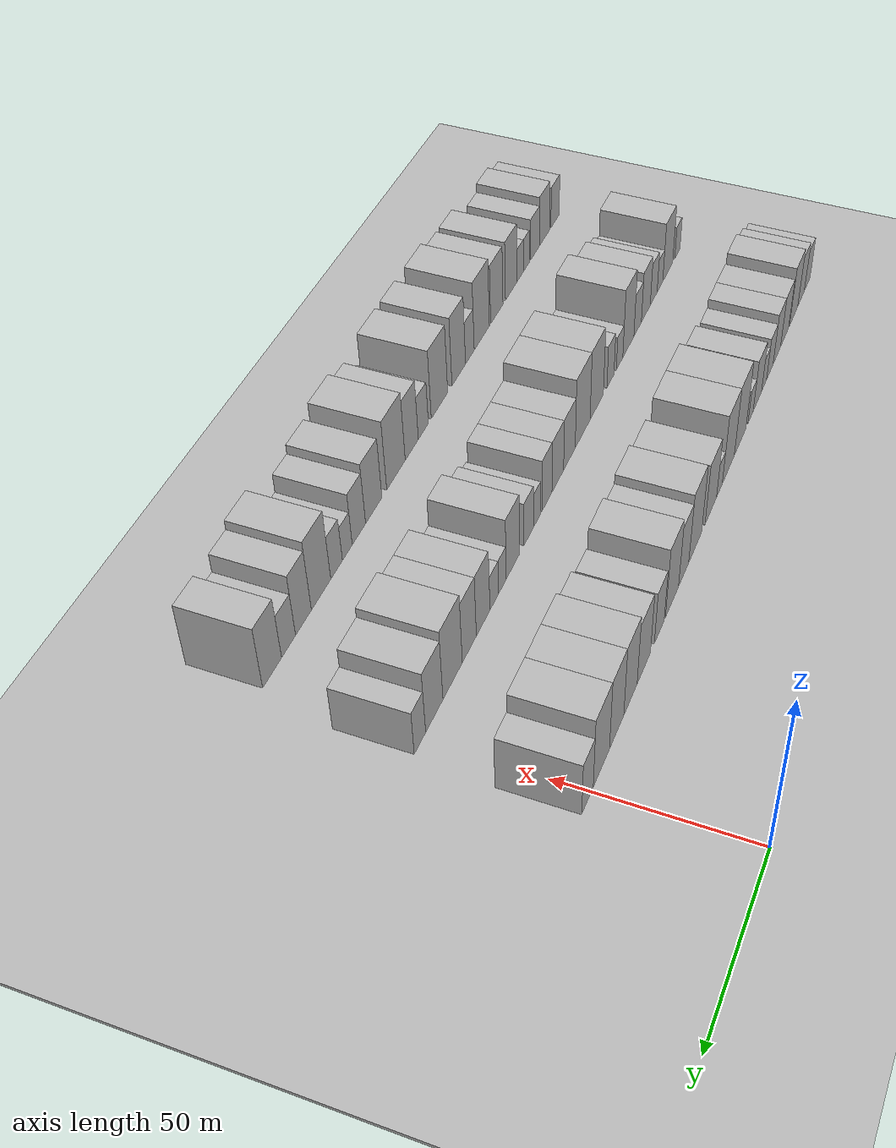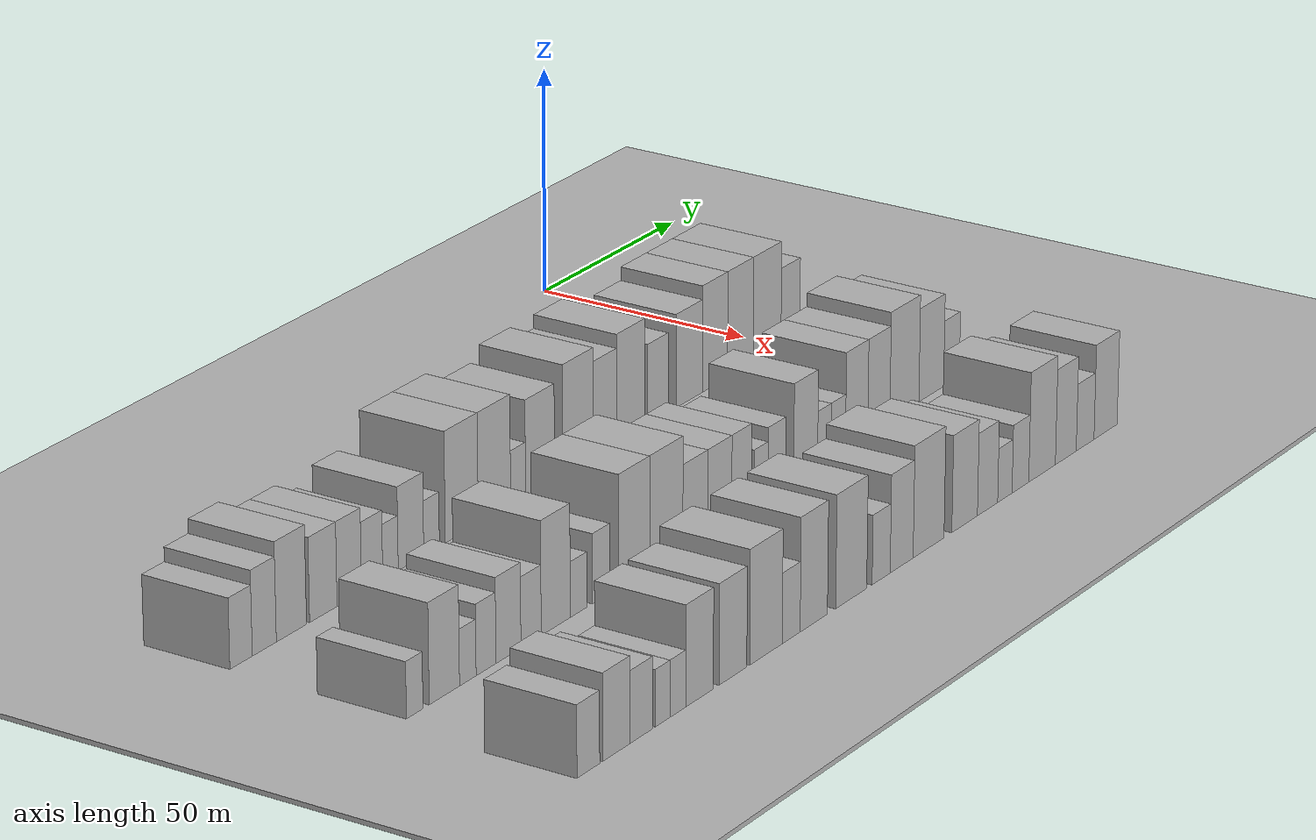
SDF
<sdf version="1.6">
 <world name="default">
  <include><name>ground_plane_1</name><uri>model://HANNAS_ground_plane</uri></include>
  <include>
   <name>ground_plane_2</name>
   <uri>model://HANNAS_ground_plane</uri>
   <pose>100 0 0  0 0 0</pose>
  </include>
  <model name="building_47">
   <static>1</static>
   <pose>50.0000 -191.1888 0 0.000000 0.000000 0.000000</pose>
   <link name="link">
    <pose>0 0 7.50 0 0 0</pose>
    <collision name="collision"><geometry><box><size>20.0000 7.0238 15.0000</size></box></geometry></collision>
    <visual name="visual">
     <cast_shadows>0</cast_shadows>
     <geometry><box><size>20.0000 7.0238 15.0000</size></box></geometry>
     <material>
      <script>
       <uri>model://HANNAS_wall/materials/scripts</uri>
       <uri>model://HANNAS_wall/materials/textures</uri>
       <name>vrc/HANNAS_wall</name>
      </script>
     </material>
    </visual>
   </link>
  </model>
  <model name="building_48">
   <static>1</static>
   <pose>50.0000 -183.8771 0 0.000000 0.000000 0.000000</pose>
   <link name="link">
    <pose>0 0 9.00 0 0 0</pose>
    <collision name="collision"><geometry><box><size>20.0000 7.5996 18.0000</size></box></geometry></collision>
    <visual name="visual">
     <cast_shadows>0</cast_shadows>
     <geometry><box><size>20.0000 7.5996 18.0000</size></box></geometry>
     <material>
      <script>
       <uri>model://HANNAS_wall/materials/scripts</uri>
       <uri>model://HANNAS_wall/materials/textures</uri>
       <name>vrc/HANNAS_wall</name>
      </script>
     </material>
    </visual>
   </link>
  </model>
  <model name="building_49">
   <static>1</static>
   <pose>50.0000 -175.2569 0 0.000000 0.000000 0.000000</pose>
   <link name="link">
    <pose>0 0 10.50 0 0 0</pose>
    <collision name="collision"><geometry><box><size>20.0000 9.6407 21.0000</size></box></geometry></collision>
    <visual name="visual">
     <cast_shadows>0</cast_shadows>
     <geometry><box><size>20.0000 9.6407 21.0000</size></box></geometry>
     <material>
      <script>
       <uri>model://HANNAS_wall/materials/scripts</uri>
       <uri>model://HANNAS_wall/materials/textures</uri>
       <name>vrc/HANNAS_wall</name>
      </script>
     </material>
    </visual>
   </link>
  </model>
  <model name="building_50">
   <static>1</static>
   <pose>50.0000 -164.9805 0 0.000000 0.000000 0.000000</pose>
   <link name="link">
    <pose>0 0 9.00 0 0 0</pose>
    <collision name="collision"><geometry><box><size>20.0000 8.9122 18.0000</size></box></geometry></collision>
    <visual name="visual">
     <cast_shadows>0</cast_shadows>
     <geometry><box><size>20.0000 8.9122 18.0000</size></box></geometry>
     <material>
      <script>
       <uri>model://HANNAS_wall/materials/scripts</uri>
       <uri>model://HANNAS_wall/materials/textures</uri>
       <name>vrc/HANNAS_wall</name>
      </script>
     </material>
    </visual>
   </link>
  </model>
  <model name="building_51">
   <static>1</static>
   <pose>50.0000 -156.5188 0 0.000000 0.000000 0.000000</pose>
   <link name="link">
    <pose>0 0 9.00 0 0 0</pose>
    <collision name="collision"><geometry><box><size>20.0000 8.0112 18.0000</size></box></geometry></collision>
    <visual name="visual">
     <cast_shadows>0</cast_shadows>
     <geometry><box><size>20.0000 8.0112 18.0000</size></box></geometry>
     <material>
      <script>
       <uri>model://HANNAS_wall/materials/scripts</uri>
       <uri>model://HANNAS_wall/materials/textures</uri>
       <name>vrc/HANNAS_wall</name>
      </script>
     </material>
    </visual>
   </link>
  </model>
  <model name="building_52">
   <static>1</static>
   <pose>50.0000 -149.0171 0 0.000000 0.000000 0.000000</pose>
   <link name="link">
    <pose>0 0 7.50 0 0 0</pose>
    <collision name="collision"><geometry><box><size>20.0000 6.9921 15.0000</size></box></geometry></collision>
    <visual name="visual">
     <cast_shadows>0</cast_shadows>
     <geometry><box><size>20.0000 6.9921 15.0000</size></box></geometry>
     <material>
      <script>
       <uri>model://HANNAS_wall/materials/scripts</uri>
       <uri>model://HANNAS_wall/materials/textures</uri>
       <name>vrc/HANNAS_wall</name>
      </script>
     </material>
    </visual>
   </link>
  </model>
  <model name="building_53">
   <static>1</static>
   <pose>50.0000 -142.9342 0 0.000000 0.000000 0.000000</pose>
   <link name="link">
    <pose>0 0 6.00 0 0 0</pose>
    <collision name="collision"><geometry><box><size>20.0000 5.1737 12.0000</size></box></geometry></collision>
    <visual name="visual">
     <cast_shadows>0</cast_shadows>
     <geometry><box><size>20.0000 5.1737 12.0000</size></box></geometry>
     <material>
      <script>
       <uri>model://HANNAS_wall/materials/scripts</uri>
       <uri>model://HANNAS_wall/materials/textures</uri>
       <name>vrc/HANNAS_wall</name>
      </script>
     </material>
    </visual>
   </link>
  </model>
  <model name="building_54">
   <static>1</static>
   <pose>50.0000 -136.0577 0 0.000000 0.000000 0.000000</pose>
   <link name="link">
    <pose>0 0 9.00 0 0 0</pose>
    <collision name="collision"><geometry><box><size>20.0000 8.5793 18.0000</size></box></geometry></collision>
    <visual name="visual">
     <cast_shadows>0</cast_shadows>
     <geometry><box><size>20.0000 8.5793 18.0000</size></box></geometry>
     <material>
      <script>
       <uri>model://HANNAS_wall/materials/scripts</uri>
       <uri>model://HANNAS_wall/materials/textures</uri>
       <name>vrc/HANNAS_wall</name>
      </script>
     </material>
    </visual>
   </link>
  </model>
  <model name="building_55">
   <static>1</static>
   <pose>50.0000 -129.1107 0 0.000000 0.000000 0.000000</pose>
   <link name="link">
    <pose>0 0 6.00 0 0 0</pose>
    <collision name="collision"><geometry><box><size>20.0000 5.3147 12.0000</size></box></geometry></collision>
    <visual name="visual">
     <cast_shadows>0</cast_shadows>
     <geometry><box><size>20.0000 5.3147 12.0000</size></box></geometry>
     <material>
      <script>
       <uri>model://HANNAS_wall/materials/scripts</uri>
       <uri>model://HANNAS_wall/materials/textures</uri>
       <name>vrc/HANNAS_wall</name>
      </script>
     </material>
    </visual>
   </link>
  </model>
  <model name="building_56">
   <static>1</static>
   <pose>50.0000 -118.7897 0 0.000000 0.000000 0.000000</pose>
   <link name="link">
    <pose>0 0 12.00 0 0 0</pose>
    <collision name="collision"><geometry><box><size>20.0000 11.3274 24.0000</size></box></geometry></collision>
    <visual name="visual">
     <cast_shadows>0</cast_shadows>
     <geometry><box><size>20.0000 11.3274 24.0000</size></box></geometry>
     <material>
      <script>
       <uri>model://HANNAS_wall/materials/scripts</uri>
       <uri>model://HANNAS_wall/materials/textures</uri>
       <name>vrc/HANNAS_wall</name>
      </script>
     </material>
    </visual>
   </link>
  </model>
  <model name="building_57">
   <static>1</static>
   <pose>50.0000 -107.4738 0 0.000000 0.000000 0.000000</pose>
   <link name="link">
    <pose>0 0 12.00 0 0 0</pose>
    <collision name="collision"><geometry><box><size>20.0000 11.3045 24.0000</size></box></geometry></collision>
    <visual name="visual">
     <cast_shadows>0</cast_shadows>
     <geometry><box><size>20.0000 11.3045 24.0000</size></box></geometry>
     <material>
      <script>
       <uri>model://HANNAS_wall/materials/scripts</uri>
       <uri>model://HANNAS_wall/materials/textures</uri>
       <name>vrc/HANNAS_wall</name>
      </script>
     </material>
    </visual>
   </link>
  </model>
  <model name="building_58">
   <static>1</static>
   <pose>50.0000 -99.1936 0 0.000000 0.000000 0.000000</pose>
   <link name="link">
    <pose>0 0 6.00 0 0 0</pose>
    <collision name="collision"><geometry><box><size>20.0000 5.2559 12.0000</size></box></geometry></collision>
    <visual name="visual">
     <cast_shadows>0</cast_shadows>
     <geometry><box><size>20.0000 5.2559 12.0000</size></box></geometry>
     <material>
      <script>
       <uri>model://HANNAS_wall/materials/scripts</uri>
       <uri>model://HANNAS_wall/materials/textures</uri>
       <name>vrc/HANNAS_wall</name>
      </script>
     </material>
    </visual>
   </link>
  </model>
  <model name="building_59">
   <static>1</static>
   <pose>50.0000 -91.4151 0 0.000000 0.000000 0.000000</pose>
   <link name="link">
    <pose>0 0 10.50 0 0 0</pose>
    <collision name="collision"><geometry><box><size>20.0000 10.3010 21.0000</size></box></geometry></collision>
    <visual name="visual">
     <cast_shadows>0</cast_shadows>
     <geometry><box><size>20.0000 10.3010 21.0000</size></box></geometry>
     <material>
      <script>
       <uri>model://HANNAS_wall/materials/scripts</uri>
       <uri>model://HANNAS_wall/materials/textures</uri>
       <name>vrc/HANNAS_wall</name>
      </script>
     </material>
    </visual>
   </link>
  </model>
  <model name="building_60">
   <static>1</static>
   <pose>50.0000 -77.7323 0 0.000000 0.000000 0.000000</pose>
   <link name="link">
    <pose>0 0 12.00 0 0 0</pose>
    <collision name="collision"><geometry><box><size>20.0000 11.0646 24.0000</size></box></geometry></collision>
    <visual name="visual">
     <cast_shadows>0</cast_shadows>
     <geometry><box><size>20.0000 11.0646 24.0000</size></box></geometry>
     <material>
      <script>
       <uri>model://HANNAS_wall/materials/scripts</uri>
       <uri>model://HANNAS_wall/materials/textures</uri>
       <name>vrc/HANNAS_wall</name>
      </script>
     </material>
    </visual>
   </link>
  </model>
  <model name="building_61">
   <static>1</static>
   <pose>50.0000 -67.9628 0 0.000000 0.000000 0.000000</pose>
   <link name="link">
    <pose>0 0 10.50 0 0 0</pose>
    <collision name="collision"><geometry><box><size>20.0000 8.4744 21.0000</size></box></geometry></collision>
    <visual name="visual">
     <cast_shadows>0</cast_shadows>
     <geometry><box><size>20.0000 8.4744 21.0000</size></box></geometry>
     <material>
      <script>
       <uri>model://HANNAS_wall/materials/scripts</uri>
       <uri>model://HANNAS_wall/materials/textures</uri>
       <name>vrc/HANNAS_wall</name>
      </script>
     </material>
    </visual>
   </link>
  </model>
  <model name="building_62">
   <static>1</static>
   <pose>50.0000 -58.4521 0 0.000000 0.000000 0.000000</pose>
   <link name="link">
    <pose>0 0 12.00 0 0 0</pose>
    <collision name="collision"><geometry><box><size>20.0000 10.5471 24.0000</size></box></geometry></collision>
    <visual name="visual">
     <cast_shadows>0</cast_shadows>
     <geometry><box><size>20.0000 10.5471 24.0000</size></box></geometry>
     <material>
      <script>
       <uri>model://HANNAS_wall/materials/scripts</uri>
       <uri>model://HANNAS_wall/materials/textures</uri>
       <name>vrc/HANNAS_wall</name>
      </script>
     </material>
    </visual>
   </link>
  </model>
  <model name="building_63">
   <static>1</static>
   <pose>50.0000 -48.3704 0 0.000000 0.000000 0.000000</pose>
   <link name="link">
    <pose>0 0 9.00 0 0 0</pose>
    <collision name="collision"><geometry><box><size>20.0000 7.6163 18.0000</size></box></geometry></collision>
    <visual name="visual">
     <cast_shadows>0</cast_shadows>
     <geometry><box><size>20.0000 7.6163 18.0000</size></box></geometry>
     <material>
      <script>
       <uri>model://HANNAS_wall/materials/scripts</uri>
       <uri>model://HANNAS_wall/materials/textures</uri>
       <name>vrc/HANNAS_wall</name>
      </script>
     </material>
    </visual>
   </link>
  </model>
  <model name="building_64">
   <static>1</static>
   <pose>50.0000 -36.5707 0 0.000000 0.000000 0.000000</pose>
   <link name="link">
    <pose>0 0 10.50 0 0 0</pose>
    <collision name="collision"><geometry><box><size>20.0000 9.9831 21.0000</size></box></geometry></collision>
    <visual name="visual">
     <cast_shadows>0</cast_shadows>
     <geometry><box><size>20.0000 9.9831 21.0000</size></box></geometry>
     <material>
      <script>
       <uri>model://HANNAS_wall/materials/scripts</uri>
       <uri>model://HANNAS_wall/materials/textures</uri>
       <name>vrc/HANNAS_wall</name>
      </script>
     </material>
    </visual>
   </link>
  </model>
  <model name="building_65">
   <static>1</static>
   <pose>50.0000 -26.7552 0 0.000000 0.000000 0.000000</pose>
   <link name="link">
    <pose>0 0 12.00 0 0 0</pose>
    <collision name="collision"><geometry><box><size>20.0000 9.6478 24.0000</size></box></geometry></collision>
    <visual name="visual">
     <cast_shadows>0</cast_shadows>
     <geometry><box><size>20.0000 9.6478 24.0000</size></box></geometry>
     <material>
      <script>
       <uri>model://HANNAS_wall/materials/scripts</uri>
       <uri>model://HANNAS_wall/materials/textures</uri>
       <name>vrc/HANNAS_wall</name>
      </script>
     </material>
    </visual>
   </link>
  </model>
  <model name="building_66">
   <static>1</static>
   <pose>50.0000 -16.9286 0 0.000000 0.000000 0.000000</pose>
   <link name="link">
    <pose>0 0 12.00 0 0 0</pose>
    <collision name="collision"><geometry><box><size>20.0000 10.0054 24.0000</size></box></geometry></collision>
    <visual name="visual">
     <cast_shadows>0</cast_shadows>
     <geometry><box><size>20.0000 10.0054 24.0000</size></box></geometry>
     <material>
      <script>
       <uri>model://HANNAS_wall/materials/scripts</uri>
       <uri>model://HANNAS_wall/materials/textures</uri>
       <name>vrc/HANNAS_wall</name>
      </script>
     </material>
    </visual>
   </link>
  </model>
  <model name="building_67">
   <static>1</static>
   <pose>50.0000 -6.4677 0 0.000000 0.000000 0.000000</pose>
   <link name="link">
    <pose>0 0 12.00 0 0 0</pose>
    <collision name="collision"><geometry><box><size>20.0000 10.9163 24.0000</size></box></geometry></collision>
    <visual name="visual">
     <cast_shadows>0</cast_shadows>
     <geometry><box><size>20.0000 10.9163 24.0000</size></box></geometry>
     <material>
      <script>
       <uri>model://HANNAS_wall/materials/scripts</uri>
       <uri>model://HANNAS_wall/materials/textures</uri>
       <name>vrc/HANNAS_wall</name>
      </script>
     </material>
    </visual>
   </link>
  </model>
  <model name="building_68">
   <static>1</static>
   <pose>50.0000 2.7453 0 0.000000 0.000000 0.000000</pose>
   <link name="link">
    <pose>0 0 9.00 0 0 0</pose>
    <collision name="collision"><geometry><box><size>20.0000 7.5098 18.0000</size></box></geometry></collision>
    <visual name="visual">
     <cast_shadows>0</cast_shadows>
     <geometry><box><size>20.0000 7.5098 18.0000</size></box></geometry>
     <material>
      <script>
       <uri>model://HANNAS_wall/materials/scripts</uri>
       <uri>model://HANNAS_wall/materials/textures</uri>
       <name>vrc/HANNAS_wall</name>
      </script>
     </material>
    </visual>
   </link>
  </model>
  <model name="building_175">
   <static>1</static>
   <pose>90.0000 -192.0570 0 0.000000 0.000000 0.000000</pose>
   <link name="link">
    <pose>0 0 6.00 0 0 0</pose>
    <collision name="collision"><geometry><box><size>20.0000 5.2739 12.0000</size></box></geometry></collision>
    <visual name="visual">
     <cast_shadows>0</cast_shadows>
     <geometry><box><size>20.0000 5.2739 12.0000</size></box></geometry>
     <material>
      <script>
       <uri>model://HANNAS_wall/materials/scripts</uri>
       <uri>model://HANNAS_wall/materials/textures</uri>
       <name>vrc/HANNAS_wall</name>
      </script>
     </material>
    </visual>
   </link>
  </model>
  <model name="building_176">
   <static>1</static>
   <pose>90.0000 -182.5187 0 0.000000 0.000000 0.000000</pose>
   <link name="link">
    <pose>0 0 10.50 0 0 0</pose>
    <collision name="collision"><geometry><box><size>20.0000 9.8026 21.0000</size></box></geometry></collision>
    <visual name="visual">
     <cast_shadows>0</cast_shadows>
     <geometry><box><size>20.0000 9.8026 21.0000</size></box></geometry>
     <material>
      <script>
       <uri>model://HANNAS_wall/materials/scripts</uri>
       <uri>model://HANNAS_wall/materials/textures</uri>
       <name>vrc/HANNAS_wall</name>
      </script>
     </material>
    </visual>
   </link>
  </model>
  <model name="building_177">
   <static>1</static>
   <pose>90.0000 -174.9093 0 0.000000 0.000000 0.000000</pose>
   <link name="link">
    <pose>0 0 6.00 0 0 0</pose>
    <collision name="collision"><geometry><box><size>20.0000 5.4163 12.0000</size></box></geometry></collision>
    <visual name="visual">
     <cast_shadows>0</cast_shadows>
     <geometry><box><size>20.0000 5.4163 12.0000</size></box></geometry>
     <material>
      <script>
       <uri>model://HANNAS_wall/materials/scripts</uri>
       <uri>model://HANNAS_wall/materials/textures</uri>
       <name>vrc/HANNAS_wall</name>
      </script>
     </material>
    </visual>
   </link>
  </model>
  <model name="building_178">
   <static>1</static>
   <pose>90.0000 -168.9414 0 0.000000 0.000000 0.000000</pose>
   <link name="link">
    <pose>0 0 7.50 0 0 0</pose>
    <collision name="collision"><geometry><box><size>20.0000 6.5194 15.0000</size></box></geometry></collision>
    <visual name="visual">
     <cast_shadows>0</cast_shadows>
     <geometry><box><size>20.0000 6.5194 15.0000</size></box></geometry>
     <material>
      <script>
       <uri>model://HANNAS_wall/materials/scripts</uri>
       <uri>model://HANNAS_wall/materials/textures</uri>
       <name>vrc/HANNAS_wall</name>
      </script>
     </material>
    </visual>
   </link>
  </model>
  <model name="building_179">
   <static>1</static>
   <pose>90.0000 -161.5292 0 0.000000 0.000000 0.000000</pose>
   <link name="link">
    <pose>0 0 9.00 0 0 0</pose>
    <collision name="collision"><geometry><box><size>20.0000 8.3050 18.0000</size></box></geometry></collision>
    <visual name="visual">
     <cast_shadows>0</cast_shadows>
     <geometry><box><size>20.0000 8.3050 18.0000</size></box></geometry>
     <material>
      <script>
       <uri>model://HANNAS_wall/materials/scripts</uri>
       <uri>model://HANNAS_wall/materials/textures</uri>
       <name>vrc/HANNAS_wall</name>
      </script>
     </material>
    </visual>
   </link>
  </model>
  <model name="building_180">
   <static>1</static>
   <pose>90.0000 -153.9781 0 0.000000 0.000000 0.000000</pose>
   <link name="link">
    <pose>0 0 7.50 0 0 0</pose>
    <collision name="collision"><geometry><box><size>20.0000 6.7971 15.0000</size></box></geometry></collision>
    <visual name="visual">
     <cast_shadows>0</cast_shadows>
     <geometry><box><size>20.0000 6.7971 15.0000</size></box></geometry>
     <material>
      <script>
       <uri>model://HANNAS_wall/materials/scripts</uri>
       <uri>model://HANNAS_wall/materials/textures</uri>
       <name>vrc/HANNAS_wall</name>
      </script>
     </material>
    </visual>
   </link>
  </model>
  <model name="building_181">
   <static>1</static>
   <pose>90.0000 -145.6504 0 0.000000 0.000000 0.000000</pose>
   <link name="link">
    <pose>0 0 12.00 0 0 0</pose>
    <collision name="collision"><geometry><box><size>20.0000 9.8584 24.0000</size></box></geometry></collision>
    <visual name="visual">
     <cast_shadows>0</cast_shadows>
     <geometry><box><size>20.0000 9.8584 24.0000</size></box></geometry>
     <material>
      <script>
       <uri>model://HANNAS_wall/materials/scripts</uri>
       <uri>model://HANNAS_wall/materials/textures</uri>
       <name>vrc/HANNAS_wall</name>
      </script>
     </material>
    </visual>
   </link>
  </model>
  <model name="building_182">
   <static>1</static>
   <pose>90.0000 -137.8885 0 0.000000 0.000000 0.000000</pose>
   <link name="link">
    <pose>0 0 6.00 0 0 0</pose>
    <collision name="collision"><geometry><box><size>20.0000 5.6654 12.0000</size></box></geometry></collision>
    <visual name="visual">
     <cast_shadows>0</cast_shadows>
     <geometry><box><size>20.0000 5.6654 12.0000</size></box></geometry>
     <material>
      <script>
       <uri>model://HANNAS_wall/materials/scripts</uri>
       <uri>model://HANNAS_wall/materials/textures</uri>
       <name>vrc/HANNAS_wall</name>
      </script>
     </material>
    </visual>
   </link>
  </model>
  <model name="building_183">
   <static>1</static>
   <pose>90.0000 -130.0543 0 0.000000 0.000000 0.000000</pose>
   <link name="link">
    <pose>0 0 7.50 0 0 0</pose>
    <collision name="collision"><geometry><box><size>20.0000 6.0030 15.0000</size></box></geometry></collision>
    <visual name="visual">
     <cast_shadows>0</cast_shadows>
     <geometry><box><size>20.0000 6.0030 15.0000</size></box></geometry>
     <material>
      <script>
       <uri>model://HANNAS_wall/materials/scripts</uri>
       <uri>model://HANNAS_wall/materials/textures</uri>
       <name>vrc/HANNAS_wall</name>
      </script>
     </material>
    </visual>
   </link>
  </model>
  <model name="building_184">
   <static>1</static>
   <pose>90.0000 -118.5906 0 0.000000 0.000000 0.000000</pose>
   <link name="link">
    <pose>0 0 12.00 0 0 0</pose>
    <collision name="collision"><geometry><box><size>20.0000 10.9243 24.0000</size></box></geometry></collision>
    <visual name="visual">
     <cast_shadows>0</cast_shadows>
     <geometry><box><size>20.0000 10.9243 24.0000</size></box></geometry>
     <material>
      <script>
       <uri>model://HANNAS_wall/materials/scripts</uri>
       <uri>model://HANNAS_wall/materials/textures</uri>
       <name>vrc/HANNAS_wall</name>
      </script>
     </material>
    </visual>
   </link>
  </model>
  <model name="building_185">
   <static>1</static>
   <pose>90.0000 -107.2223 0 0.000000 0.000000 0.000000</pose>
   <link name="link">
    <pose>0 0 12.00 0 0 0</pose>
    <collision name="collision"><geometry><box><size>20.0000 11.8123 24.0000</size></box></geometry></collision>
    <visual name="visual">
     <cast_shadows>0</cast_shadows>
     <geometry><box><size>20.0000 11.8123 24.0000</size></box></geometry>
     <material>
      <script>
       <uri>model://HANNAS_wall/materials/scripts</uri>
       <uri>model://HANNAS_wall/materials/textures</uri>
       <name>vrc/HANNAS_wall</name>
      </script>
     </material>
    </visual>
   </link>
  </model>
  <model name="building_186">
   <static>1</static>
   <pose>90.0000 -96.8286 0 0.000000 0.000000 0.000000</pose>
   <link name="link">
    <pose>0 0 9.00 0 0 0</pose>
    <collision name="collision"><geometry><box><size>20.0000 8.9752 18.0000</size></box></geometry></collision>
    <visual name="visual">
     <cast_shadows>0</cast_shadows>
     <geometry><box><size>20.0000 8.9752 18.0000</size></box></geometry>
     <material>
      <script>
       <uri>model://HANNAS_wall/materials/scripts</uri>
       <uri>model://HANNAS_wall/materials/textures</uri>
       <name>vrc/HANNAS_wall</name>
      </script>
     </material>
    </visual>
   </link>
  </model>
  <model name="building_187">
   <static>1</static>
   <pose>90.0000 -87.9574 0 0.000000 0.000000 0.000000</pose>
   <link name="link">
    <pose>0 0 9.00 0 0 0</pose>
    <collision name="collision"><geometry><box><size>20.0000 8.7671 18.0000</size></box></geometry></collision>
    <visual name="visual">
     <cast_shadows>0</cast_shadows>
     <geometry><box><size>20.0000 8.7671 18.0000</size></box></geometry>
     <material>
      <script>
       <uri>model://HANNAS_wall/materials/scripts</uri>
       <uri>model://HANNAS_wall/materials/textures</uri>
       <name>vrc/HANNAS_wall</name>
      </script>
     </material>
    </visual>
   </link>
  </model>
  <model name="building_188">
   <static>1</static>
   <pose>90.0000 -79.9496 0 0.000000 0.000000 0.000000</pose>
   <link name="link">
    <pose>0 0 9.00 0 0 0</pose>
    <collision name="collision"><geometry><box><size>20.0000 7.2484 18.0000</size></box></geometry></collision>
    <visual name="visual">
     <cast_shadows>0</cast_shadows>
     <geometry><box><size>20.0000 7.2484 18.0000</size></box></geometry>
     <material>
      <script>
       <uri>model://HANNAS_wall/materials/scripts</uri>
       <uri>model://HANNAS_wall/materials/textures</uri>
       <name>vrc/HANNAS_wall</name>
      </script>
     </material>
    </visual>
   </link>
  </model>
  <model name="building_189">
   <static>1</static>
   <pose>90.0000 -72.7634 0 0.000000 0.000000 0.000000</pose>
   <link name="link">
    <pose>0 0 6.00 0 0 0</pose>
    <collision name="collision"><geometry><box><size>20.0000 5.1242 12.0000</size></box></geometry></collision>
    <visual name="visual">
     <cast_shadows>0</cast_shadows>
     <geometry><box><size>20.0000 5.1242 12.0000</size></box></geometry>
     <material>
      <script>
       <uri>model://HANNAS_wall/materials/scripts</uri>
       <uri>model://HANNAS_wall/materials/textures</uri>
       <name>vrc/HANNAS_wall</name>
      </script>
     </material>
    </visual>
   </link>
  </model>
  <model name="building_190">
   <static>1</static>
   <pose>90.0000 -66.8589 0 0.000000 0.000000 0.000000</pose>
   <link name="link">
    <pose>0 0 7.50 0 0 0</pose>
    <collision name="collision"><geometry><box><size>20.0000 6.6847 15.0000</size></box></geometry></collision>
    <visual name="visual">
     <cast_shadows>0</cast_shadows>
     <geometry><box><size>20.0000 6.6847 15.0000</size></box></geometry>
     <material>
      <script>
       <uri>model://HANNAS_wall/materials/scripts</uri>
       <uri>model://HANNAS_wall/materials/textures</uri>
       <name>vrc/HANNAS_wall</name>
      </script>
     </material>
    </visual>
   </link>
  </model>
  <model name="building_191">
   <static>1</static>
   <pose>90.0000 -55.9741 0 0.000000 0.000000 0.000000</pose>
   <link name="link">
    <pose>0 0 10.50 0 0 0</pose>
    <collision name="collision"><geometry><box><size>20.0000 9.0850 21.0000</size></box></geometry></collision>
    <visual name="visual">
     <cast_shadows>0</cast_shadows>
     <geometry><box><size>20.0000 9.0850 21.0000</size></box></geometry>
     <material>
      <script>
       <uri>model://HANNAS_wall/materials/scripts</uri>
       <uri>model://HANNAS_wall/materials/textures</uri>
       <name>vrc/HANNAS_wall</name>
      </script>
     </material>
    </visual>
   </link>
  </model>
  <model name="building_192">
   <static>1</static>
   <pose>90.0000 -48.8987 0 0.000000 0.000000 0.000000</pose>
   <link name="link">
    <pose>0 0 6.00 0 0 0</pose>
    <collision name="collision"><geometry><box><size>20.0000 5.0657 12.0000</size></box></geometry></collision>
    <visual name="visual">
     <cast_shadows>0</cast_shadows>
     <geometry><box><size>20.0000 5.0657 12.0000</size></box></geometry>
     <material>
      <script>
       <uri>model://HANNAS_wall/materials/scripts</uri>
       <uri>model://HANNAS_wall/materials/textures</uri>
       <name>vrc/HANNAS_wall</name>
      </script>
     </material>
    </visual>
   </link>
  </model>
  <model name="building_193">
   <static>1</static>
   <pose>90.0000 -43.5372 0 0.000000 0.000000 0.000000</pose>
   <link name="link">
    <pose>0 0 6.00 0 0 0</pose>
    <collision name="collision"><geometry><box><size>20.0000 5.6573 12.0000</size></box></geometry></collision>
    <visual name="visual">
     <cast_shadows>0</cast_shadows>
     <geometry><box><size>20.0000 5.6573 12.0000</size></box></geometry>
     <material>
      <script>
       <uri>model://HANNAS_wall/materials/scripts</uri>
       <uri>model://HANNAS_wall/materials/textures</uri>
       <name>vrc/HANNAS_wall</name>
      </script>
     </material>
    </visual>
   </link>
  </model>
  <model name="building_194">
   <static>1</static>
   <pose>90.0000 -36.3750 0 0.000000 0.000000 0.000000</pose>
   <link name="link">
    <pose>0 0 10.50 0 0 0</pose>
    <collision name="collision"><geometry><box><size>20.0000 8.6672 21.0000</size></box></geometry></collision>
    <visual name="visual">
     <cast_shadows>0</cast_shadows>
     <geometry><box><size>20.0000 8.6672 21.0000</size></box></geometry>
     <material>
      <script>
       <uri>model://HANNAS_wall/materials/scripts</uri>
       <uri>model://HANNAS_wall/materials/textures</uri>
       <name>vrc/HANNAS_wall</name>
      </script>
     </material>
    </visual>
   </link>
  </model>
  <model name="building_195">
   <static>1</static>
   <pose>90.0000 -27.6956 0 0.000000 0.000000 0.000000</pose>
   <link name="link">
    <pose>0 0 10.50 0 0 0</pose>
    <collision name="collision"><geometry><box><size>20.0000 8.6914 21.0000</size></box></geometry></collision>
    <visual name="visual">
     <cast_shadows>0</cast_shadows>
     <geometry><box><size>20.0000 8.6914 21.0000</size></box></geometry>
     <material>
      <script>
       <uri>model://HANNAS_wall/materials/scripts</uri>
       <uri>model://HANNAS_wall/materials/textures</uri>
       <name>vrc/HANNAS_wall</name>
      </script>
     </material>
    </visual>
   </link>
  </model>
  <model name="building_196">
   <static>1</static>
   <pose>90.0000 -17.5672 0 0.000000 0.000000 0.000000</pose>
   <link name="link">
    <pose>0 0 12.00 0 0 0</pose>
    <collision name="collision"><geometry><box><size>20.0000 11.5655 24.0000</size></box></geometry></collision>
    <visual name="visual">
     <cast_shadows>0</cast_shadows>
     <geometry><box><size>20.0000 11.5655 24.0000</size></box></geometry>
     <material>
      <script>
       <uri>model://HANNAS_wall/materials/scripts</uri>
       <uri>model://HANNAS_wall/materials/textures</uri>
       <name>vrc/HANNAS_wall</name>
      </script>
     </material>
    </visual>
   </link>
  </model>
  <model name="building_197">
   <static>1</static>
   <pose>90.0000 -6.8051 0 0.000000 0.000000 0.000000</pose>
   <link name="link">
    <pose>0 0 10.50 0 0 0</pose>
    <collision name="collision"><geometry><box><size>20.0000 9.9586 21.0000</size></box></geometry></collision>
    <visual name="visual">
     <cast_shadows>0</cast_shadows>
     <geometry><box><size>20.0000 9.9586 21.0000</size></box></geometry>
     <material>
      <script>
       <uri>model://HANNAS_wall/materials/scripts</uri>
       <uri>model://HANNAS_wall/materials/textures</uri>
       <name>vrc/HANNAS_wall</name>
      </script>
     </material>
    </visual>
   </link>
  </model>
  <model name="building_198">
   <static>1</static>
   <pose>90.0000 1.3695 0 0.000000 0.000000 0.000000</pose>
   <link name="link">
    <pose>0 0 7.50 0 0 0</pose>
    <collision name="collision"><geometry><box><size>20.0000 6.3907 15.0000</size></box></geometry></collision>
    <visual name="visual">
     <cast_shadows>0</cast_shadows>
     <geometry><box><size>20.0000 6.3907 15.0000</size></box></geometry>
     <material>
      <script>
       <uri>model://HANNAS_wall/materials/scripts</uri>
       <uri>model://HANNAS_wall/materials/textures</uri>
       <name>vrc/HANNAS_wall</name>
      </script>
     </material>
    </visual>
   </link>
  </model>
  <model name="building_317">
   <static>1</static>
   <pose>130.0000 -194.9638 0 0.000000 0.000000 0.000000</pose>
   <link name="link">
    <pose>0 0 7.50 0 0 0</pose>
    <collision name="collision"><geometry><box><size>20.0000 7.3819 15.0000</size></box></geometry></collision>
    <visual name="visual">
     <cast_shadows>0</cast_shadows>
     <geometry><box><size>20.0000 7.3819 15.0000</size></box></geometry>
     <material>
      <script>
       <uri>model://HANNAS_wall/materials/scripts</uri>
       <uri>model://HANNAS_wall/materials/textures</uri>
       <name>vrc/HANNAS_wall</name>
      </script>
     </material>
    </visual>
   </link>
  </model>
  <model name="building_318">
   <static>1</static>
   <pose>130.0000 -185.8036 0 0.000000 0.000000 0.000000</pose>
   <link name="link">
    <pose>0 0 9.00 0 0 0</pose>
    <collision name="collision"><geometry><box><size>20.0000 8.9386 18.0000</size></box></geometry></collision>
    <visual name="visual">
     <cast_shadows>0</cast_shadows>
     <geometry><box><size>20.0000 8.9386 18.0000</size></box></geometry>
     <material>
      <script>
       <uri>model://HANNAS_wall/materials/scripts</uri>
       <uri>model://HANNAS_wall/materials/textures</uri>
       <name>vrc/HANNAS_wall</name>
      </script>
     </material>
    </visual>
   </link>
  </model>
  <model name="building_319">
   <static>1</static>
   <pose>130.0000 -177.5914 0 0.000000 0.000000 0.000000</pose>
   <link name="link">
    <pose>0 0 7.50 0 0 0</pose>
    <collision name="collision"><geometry><box><size>20.0000 7.4857 15.0000</size></box></geometry></collision>
    <visual name="visual">
     <cast_shadows>0</cast_shadows>
     <geometry><box><size>20.0000 7.4857 15.0000</size></box></geometry>
     <material>
      <script>
       <uri>model://HANNAS_wall/materials/scripts</uri>
       <uri>model://HANNAS_wall/materials/textures</uri>
       <name>vrc/HANNAS_wall</name>
      </script>
     </material>
    </visual>
   </link>
  </model>
  <model name="building_320">
   <static>1</static>
   <pose>130.0000 -170.3745 0 0.000000 0.000000 0.000000</pose>
   <link name="link">
    <pose>0 0 6.00 0 0 0</pose>
    <collision name="collision"><geometry><box><size>20.0000 4.9482 12.0000</size></box></geometry></collision>
    <visual name="visual">
     <cast_shadows>0</cast_shadows>
     <geometry><box><size>20.0000 4.9482 12.0000</size></box></geometry>
     <material>
      <script>
       <uri>model://HANNAS_wall/materials/scripts</uri>
       <uri>model://HANNAS_wall/materials/textures</uri>
       <name>vrc/HANNAS_wall</name>
      </script>
     </material>
    </visual>
   </link>
  </model>
  <model name="building_321">
   <static>1</static>
   <pose>130.0000 -165.2555 0 0.000000 0.000000 0.000000</pose>
   <link name="link">
    <pose>0 0 6.00 0 0 0</pose>
    <collision name="collision"><geometry><box><size>20.0000 5.2898 12.0000</size></box></geometry></collision>
    <visual name="visual">
     <cast_shadows>0</cast_shadows>
     <geometry><box><size>20.0000 5.2898 12.0000</size></box></geometry>
     <material>
      <script>
       <uri>model://HANNAS_wall/materials/scripts</uri>
       <uri>model://HANNAS_wall/materials/textures</uri>
       <name>vrc/HANNAS_wall</name>
      </script>
     </material>
    </visual>
   </link>
  </model>
  <model name="building_322">
   <static>1</static>
   <pose>130.0000 -157.9068 0 0.000000 0.000000 0.000000</pose>
   <link name="link">
    <pose>0 0 10.50 0 0 0</pose>
    <collision name="collision"><geometry><box><size>20.0000 9.4076 21.0000</size></box></geometry></collision>
    <visual name="visual">
     <cast_shadows>0</cast_shadows>
     <geometry><box><size>20.0000 9.4076 21.0000</size></box></geometry>
     <material>
      <script>
       <uri>model://HANNAS_wall/materials/scripts</uri>
       <uri>model://HANNAS_wall/materials/textures</uri>
       <name>vrc/HANNAS_wall</name>
      </script>
     </material>
    </visual>
   </link>
  </model>
  <model name="building_323">
   <static>1</static>
   <pose>130.0000 -146.4135 0 0.000000 0.000000 0.000000</pose>
   <link name="link">
    <pose>0 0 10.50 0 0 0</pose>
    <collision name="collision"><geometry><box><size>20.0000 9.5789 21.0000</size></box></geometry></collision>
    <visual name="visual">
     <cast_shadows>0</cast_shadows>
     <geometry><box><size>20.0000 9.5789 21.0000</size></box></geometry>
     <material>
      <script>
       <uri>model://HANNAS_wall/materials/scripts</uri>
       <uri>model://HANNAS_wall/materials/textures</uri>
       <name>vrc/HANNAS_wall</name>
      </script>
     </material>
    </visual>
   </link>
  </model>
  <model name="building_324">
   <static>1</static>
   <pose>130.0000 -134.8944 0 0.000000 0.000000 0.000000</pose>
   <link name="link">
    <pose>0 0 12.00 0 0 0</pose>
    <collision name="collision"><geometry><box><size>20.0000 11.4594 24.0000</size></box></geometry></collision>
    <visual name="visual">
     <cast_shadows>0</cast_shadows>
     <geometry><box><size>20.0000 11.4594 24.0000</size></box></geometry>
     <material>
      <script>
       <uri>model://HANNAS_wall/materials/scripts</uri>
       <uri>model://HANNAS_wall/materials/textures</uri>
       <name>vrc/HANNAS_wall</name>
      </script>
     </material>
    </visual>
   </link>
  </model>
  <model name="building_325">
   <static>1</static>
   <pose>130.0000 -125.9646 0 0.000000 0.000000 0.000000</pose>
   <link name="link">
    <pose>0 0 7.50 0 0 0</pose>
    <collision name="collision"><geometry><box><size>20.0000 6.4001 15.0000</size></box></geometry></collision>
    <visual name="visual">
     <cast_shadows>0</cast_shadows>
     <geometry><box><size>20.0000 6.4001 15.0000</size></box></geometry>
     <material>
      <script>
       <uri>model://HANNAS_wall/materials/scripts</uri>
       <uri>model://HANNAS_wall/materials/textures</uri>
       <name>vrc/HANNAS_wall</name>
      </script>
     </material>
    </visual>
   </link>
  </model>
  <model name="building_326">
   <static>1</static>
   <pose>130.0000 -117.8555 0 0.000000 0.000000 0.000000</pose>
   <link name="link">
    <pose>0 0 12.00 0 0 0</pose>
    <collision name="collision"><geometry><box><size>20.0000 9.8183 24.0000</size></box></geometry></collision>
    <visual name="visual">
     <cast_shadows>0</cast_shadows>
     <geometry><box><size>20.0000 9.8183 24.0000</size></box></geometry>
     <material>
      <script>
       <uri>model://HANNAS_wall/materials/scripts</uri>
       <uri>model://HANNAS_wall/materials/textures</uri>
       <name>vrc/HANNAS_wall</name>
      </script>
     </material>
    </visual>
   </link>
  </model>
  <model name="building_327">
   <static>1</static>
   <pose>130.0000 -104.2628 0 0.000000 0.000000 0.000000</pose>
   <link name="link">
    <pose>0 0 12.00 0 0 0</pose>
    <collision name="collision"><geometry><box><size>20.0000 11.3670 24.0000</size></box></geometry></collision>
    <visual name="visual">
     <cast_shadows>0</cast_shadows>
     <geometry><box><size>20.0000 11.3670 24.0000</size></box></geometry>
     <material>
      <script>
       <uri>model://HANNAS_wall/materials/scripts</uri>
       <uri>model://HANNAS_wall/materials/textures</uri>
       <name>vrc/HANNAS_wall</name>
      </script>
     </material>
    </visual>
   </link>
  </model>
  <model name="building_328">
   <static>1</static>
   <pose>130.0000 -93.2230 0 0.000000 0.000000 0.000000</pose>
   <link name="link">
    <pose>0 0 7.50 0 0 0</pose>
    <collision name="collision"><geometry><box><size>20.0000 6.7126 15.0000</size></box></geometry></collision>
    <visual name="visual">
     <cast_shadows>0</cast_shadows>
     <geometry><box><size>20.0000 6.7126 15.0000</size></box></geometry>
     <material>
      <script>
       <uri>model://HANNAS_wall/materials/scripts</uri>
       <uri>model://HANNAS_wall/materials/textures</uri>
       <name>vrc/HANNAS_wall</name>
      </script>
     </material>
    </visual>
   </link>
  </model>
  <model name="building_329">
   <static>1</static>
   <pose>130.0000 -85.5588 0 0.000000 0.000000 0.000000</pose>
   <link name="link">
    <pose>0 0 10.50 0 0 0</pose>
    <collision name="collision"><geometry><box><size>20.0000 8.6159 21.0000</size></box></geometry></collision>
    <visual name="visual">
     <cast_shadows>0</cast_shadows>
     <geometry><box><size>20.0000 8.6159 21.0000</size></box></geometry>
     <material>
      <script>
       <uri>model://HANNAS_wall/materials/scripts</uri>
       <uri>model://HANNAS_wall/materials/textures</uri>
       <name>vrc/HANNAS_wall</name>
      </script>
     </material>
    </visual>
   </link>
  </model>
  <model name="building_330">
   <static>1</static>
   <pose>130.0000 -75.3850 0 0.000000 0.000000 0.000000</pose>
   <link name="link">
    <pose>0 0 12.00 0 0 0</pose>
    <collision name="collision"><geometry><box><size>20.0000 11.7319 24.0000</size></box></geometry></collision>
    <visual name="visual">
     <cast_shadows>0</cast_shadows>
     <geometry><box><size>20.0000 11.7319 24.0000</size></box></geometry>
     <material>
      <script>
       <uri>model://HANNAS_wall/materials/scripts</uri>
       <uri>model://HANNAS_wall/materials/textures</uri>
       <name>vrc/HANNAS_wall</name>
      </script>
     </material>
    </visual>
   </link>
  </model>
  <model name="building_331">
   <static>1</static>
   <pose>130.0000 -61.5649 0 0.000000 0.000000 0.000000</pose>
   <link name="link">
    <pose>0 0 10.50 0 0 0</pose>
    <collision name="collision"><geometry><box><size>20.0000 9.9082 21.0000</size></box></geometry></collision>
    <visual name="visual">
     <cast_shadows>0</cast_shadows>
     <geometry><box><size>20.0000 9.9082 21.0000</size></box></geometry>
     <material>
      <script>
       <uri>model://HANNAS_wall/materials/scripts</uri>
       <uri>model://HANNAS_wall/materials/textures</uri>
       <name>vrc/HANNAS_wall</name>
      </script>
     </material>
    </visual>
   </link>
  </model>
  <model name="building_332">
   <static>1</static>
   <pose>130.0000 -52.6525 0 0.000000 0.000000 0.000000</pose>
   <link name="link">
    <pose>0 0 9.00 0 0 0</pose>
    <collision name="collision"><geometry><box><size>20.0000 7.9168 18.0000</size></box></geometry></collision>
    <visual name="visual">
     <cast_shadows>0</cast_shadows>
     <geometry><box><size>20.0000 7.9168 18.0000</size></box></geometry>
     <material>
      <script>
       <uri>model://HANNAS_wall/materials/scripts</uri>
       <uri>model://HANNAS_wall/materials/textures</uri>
       <name>vrc/HANNAS_wall</name>
      </script>
     </material>
    </visual>
   </link>
  </model>
  <model name="building_333">
   <static>1</static>
   <pose>130.0000 -45.8507 0 0.000000 0.000000 0.000000</pose>
   <link name="link">
    <pose>0 0 6.00 0 0 0</pose>
    <collision name="collision"><geometry><box><size>20.0000 5.6868 12.0000</size></box></geometry></collision>
    <visual name="visual">
     <cast_shadows>0</cast_shadows>
     <geometry><box><size>20.0000 5.6868 12.0000</size></box></geometry>
     <material>
      <script>
       <uri>model://HANNAS_wall/materials/scripts</uri>
       <uri>model://HANNAS_wall/materials/textures</uri>
       <name>vrc/HANNAS_wall</name>
      </script>
     </material>
    </visual>
   </link>
  </model>
  <model name="building_334">
   <static>1</static>
   <pose>130.0000 -39.6949 0 0.000000 0.000000 0.000000</pose>
   <link name="link">
    <pose>0 0 7.50 0 0 0</pose>
    <collision name="collision"><geometry><box><size>20.0000 6.6247 15.0000</size></box></geometry></collision>
    <visual name="visual">
     <cast_shadows>0</cast_shadows>
     <geometry><box><size>20.0000 6.6247 15.0000</size></box></geometry>
     <material>
      <script>
       <uri>model://HANNAS_wall/materials/scripts</uri>
       <uri>model://HANNAS_wall/materials/textures</uri>
       <name>vrc/HANNAS_wall</name>
      </script>
     </material>
    </visual>
   </link>
  </model>
  <model name="building_335">
   <static>1</static>
   <pose>130.0000 -31.0289 0 0.000000 0.000000 0.000000</pose>
   <link name="link">
    <pose>0 0 12.00 0 0 0</pose>
    <collision name="collision"><geometry><box><size>20.0000 10.7073 24.0000</size></box></geometry></collision>
    <visual name="visual">
     <cast_shadows>0</cast_shadows>
     <geometry><box><size>20.0000 10.7073 24.0000</size></box></geometry>
     <material>
      <script>
       <uri>model://HANNAS_wall/materials/scripts</uri>
       <uri>model://HANNAS_wall/materials/textures</uri>
       <name>vrc/HANNAS_wall</name>
      </script>
     </material>
    </visual>
   </link>
  </model>
  <model name="building_336">
   <static>1</static>
   <pose>130.0000 -21.4346 0 0.000000 0.000000 0.000000</pose>
   <link name="link">
    <pose>0 0 10.50 0 0 0</pose>
    <collision name="collision"><geometry><box><size>20.0000 8.4813 21.0000</size></box></geometry></collision>
    <visual name="visual">
     <cast_shadows>0</cast_shadows>
     <geometry><box><size>20.0000 8.4813 21.0000</size></box></geometry>
     <material>
      <script>
       <uri>model://HANNAS_wall/materials/scripts</uri>
       <uri>model://HANNAS_wall/materials/textures</uri>
       <name>vrc/HANNAS_wall</name>
      </script>
     </material>
    </visual>
   </link>
  </model>
  <model name="building_337">
   <static>1</static>
   <pose>130.0000 -13.5529 0 0.000000 0.000000 0.000000</pose>
   <link name="link">
    <pose>0 0 7.50 0 0 0</pose>
    <collision name="collision"><geometry><box><size>20.0000 7.2821 15.0000</size></box></geometry></collision>
    <visual name="visual">
     <cast_shadows>0</cast_shadows>
     <geometry><box><size>20.0000 7.2821 15.0000</size></box></geometry>
     <material>
      <script>
       <uri>model://HANNAS_wall/materials/scripts</uri>
       <uri>model://HANNAS_wall/materials/textures</uri>
       <name>vrc/HANNAS_wall</name>
      </script>
     </material>
    </visual>
   </link>
  </model>
  <model name="building_338">
   <static>1</static>
   <pose>130.0000 -5.1177 0 0.000000 0.000000 0.000000</pose>
   <link name="link">
    <pose>0 0 10.50 0 0 0</pose>
    <collision name="collision"><geometry><box><size>20.0000 9.5883 21.0000</size></box></geometry></collision>
    <visual name="visual">
     <cast_shadows>0</cast_shadows>
     <geometry><box><size>20.0000 9.5883 21.0000</size></box></geometry>
     <material>
      <script>
       <uri>model://HANNAS_wall/materials/scripts</uri>
       <uri>model://HANNAS_wall/materials/textures</uri>
       <name>vrc/HANNAS_wall</name>
      </script>
     </material>
    </visual>
   </link>
  </model>
 </world>
</sdf>
